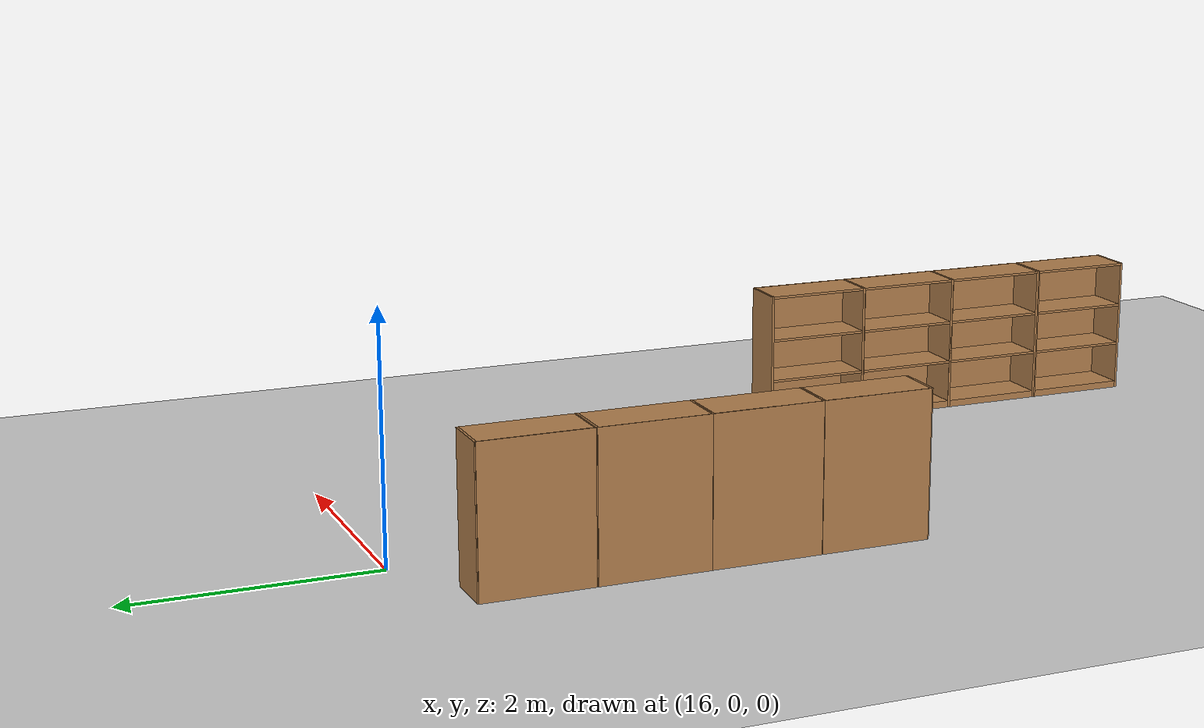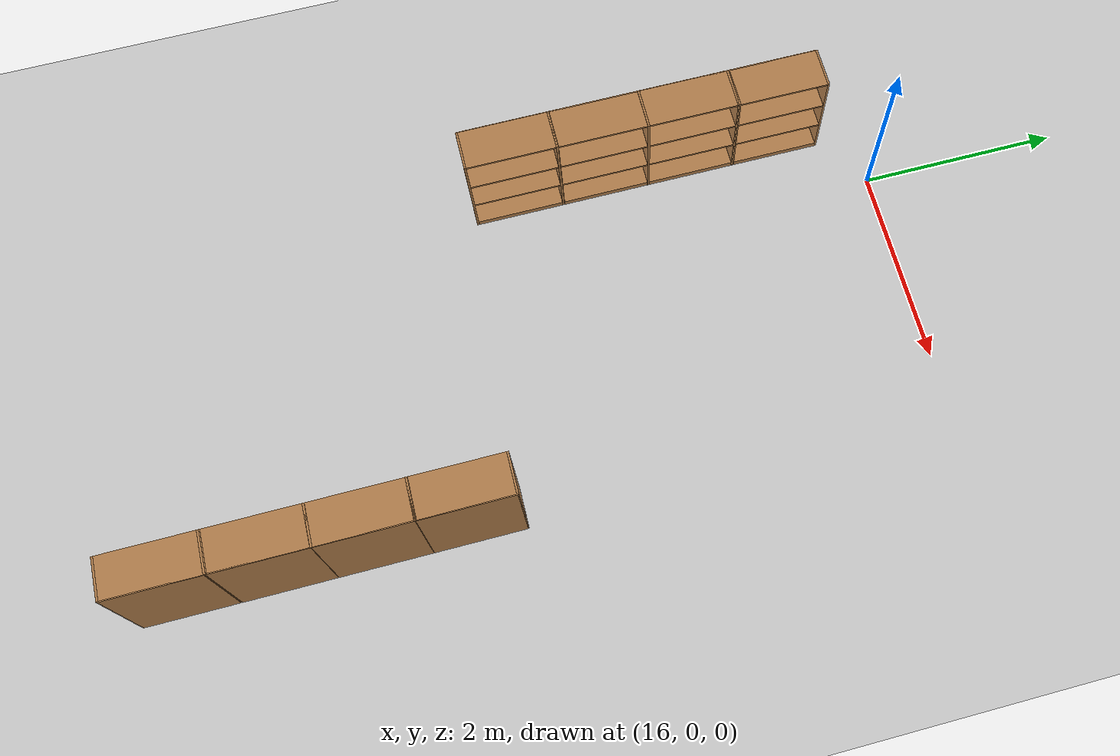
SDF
<sdf version="1.6">
 <world name="default">
  <model name="ground_plane">
   <static>1</static>
   <link name="link">
    <collision name="collision">
     <geometry><plane><normal>0 0 1</normal><size>100 100</size></plane></geometry>
     <surface><friction><ode><mu>100</mu><mu2>50</mu2></ode></friction></surface>
    </collision>
    <visual name="visual">
     <cast_shadows>0</cast_shadows>
     <geometry><plane><normal>0 0 1</normal><size>100 100</size></plane></geometry>
     <material>
      <script><uri>file://media/materials/scripts/gazebo.material</uri><name>Gazebo/Grey</name></script>
     </material>
    </visual>
   </link>
  </model>
  <model name="Bookself-4_clone_14_clone_3_clone_clone_1_clone_0">
   <model name="Bookself-3">
    <model name="bookshelf_0">
     <static>1</static>
     <link name="link">
      <inertial><mass>1</mass></inertial>
      <collision name="back">
       <pose>0 0.005 0.6 0 -0 0</pose>
       <geometry><box><size>0.9 0.01 1.2</size></box></geometry>
      </collision>
      <visual name="visual1">
       <pose>0 0.005 0.6 0 -0 0</pose>
       <geometry><box><size>0.9 0.01 1.2</size></box></geometry>
       <material>
        <script><uri>file://media/materials/scripts/gazebo.material</uri><name>Gazebo/Wood</name></script>
       </material>
      </visual>
      <collision name="left_side">
       <pose>0.45 -0.195 0.6 0 -0 0</pose>
       <geometry><box><size>0.02 0.4 1.2</size></box></geometry>
      </collision>
      <visual name="visual2">
       <pose>0.45 -0.195 0.6 0 -0 0</pose>
       <geometry><box><size>0.02 0.4 1.2</size></box></geometry>
       <material>
        <script><uri>file://media/materials/scripts/gazebo.material</uri><name>Gazebo/Wood</name></script>
       </material>
      </visual>
      <collision name="right_side">
       <pose>-0.45 -0.195 0.6 0 -0 0</pose>
       <geometry><box><size>0.02 0.4 1.2</size></box></geometry>
      </collision>
      <visual name="visual3">
       <pose>-0.45 -0.195 0.6 0 -0 0</pose>
       <geometry><box><size>0.02 0.4 1.2</size></box></geometry>
       <material>
        <script><uri>file://media/materials/scripts/gazebo.material</uri><name>Gazebo/Wood</name></script>
       </material>
      </visual>
      <collision name="bottom">
       <pose>0 -0.195 0.03 0 -0 0</pose>
       <geometry><box><size>0.88 0.4 0.06</size></box></geometry>
      </collision>
      <visual name="visual4">
       <pose>0 -0.195 0.03 0 -0 0</pose>
       <geometry><box><size>0.88 0.4 0.06</size></box></geometry>
       <material>
        <script><uri>file://media/materials/scripts/gazebo.material</uri><name>Gazebo/Wood</name></script>
       </material>
      </visual>
      <collision name="top">
       <pose>0 -0.195 1.19 0 -0 0</pose>
       <geometry><box><size>0.88 0.4 0.02</size></box></geometry>
      </collision>
      <visual name="visual5">
       <pose>0 -0.195 1.19 0 -0 0</pose>
       <geometry><box><size>0.88 0.4 0.02</size></box></geometry>
       <material>
        <script><uri>file://media/materials/scripts/gazebo.material</uri><name>Gazebo/Wood</name></script>
       </material>
      </visual>
      <collision name="low_shelf">
       <pose>0 -0.195 0.43 0 -0 0</pose>
       <geometry><box><size>0.88 0.4 0.02</size></box></geometry>
      </collision>
      <visual name="visual6">
       <pose>0 -0.195 0.43 0 -0 0</pose>
       <geometry><box><size>0.88 0.4 0.02</size></box></geometry>
       <material>
        <script><uri>file://media/materials/scripts/gazebo.material</uri><name>Gazebo/Wood</name></script>
       </material>
      </visual>
      <collision name="high_shelf">
       <pose>0 -0.195 0.8 0 -0 0</pose>
       <geometry><box><size>0.88 0.4 0.02</size></box></geometry>
      </collision>
      <visual name="visual7">
       <pose>0 -0.195 0.8 0 -0 0</pose>
       <geometry><box><size>0.88 0.4 0.02</size></box></geometry>
       <material>
        <script><uri>file://media/materials/scripts/gazebo.material</uri><name>Gazebo/Wood</name></script>
       </material>
      </visual>
     </link>
     <pose>-0.903039 0 0 0 -0 0</pose>
    </model>
    <model name="bookshelf_1">
     <static>1</static>
     <link name="link">
      <inertial><mass>1</mass></inertial>
      <collision name="back">
       <pose>0 0.005 0.6 0 -0 0</pose>
       <geometry><box><size>0.9 0.01 1.2</size></box></geometry>
      </collision>
      <visual name="visual1">
       <pose>0 0.005 0.6 0 -0 0</pose>
       <geometry><box><size>0.9 0.01 1.2</size></box></geometry>
       <material>
        <script><uri>file://media/materials/scripts/gazebo.material</uri><name>Gazebo/Wood</name></script>
       </material>
      </visual>
      <collision name="left_side">
       <pose>0.45 -0.195 0.6 0 -0 0</pose>
       <geometry><box><size>0.02 0.4 1.2</size></box></geometry>
      </collision>
      <visual name="visual2">
       <pose>0.45 -0.195 0.6 0 -0 0</pose>
       <geometry><box><size>0.02 0.4 1.2</size></box></geometry>
       <material>
        <script><uri>file://media/materials/scripts/gazebo.material</uri><name>Gazebo/Wood</name></script>
       </material>
      </visual>
      <collision name="right_side">
       <pose>-0.45 -0.195 0.6 0 -0 0</pose>
       <geometry><box><size>0.02 0.4 1.2</size></box></geometry>
      </collision>
      <visual name="visual3">
       <pose>-0.45 -0.195 0.6 0 -0 0</pose>
       <geometry><box><size>0.02 0.4 1.2</size></box></geometry>
       <material>
        <script><uri>file://media/materials/scripts/gazebo.material</uri><name>Gazebo/Wood</name></script>
       </material>
      </visual>
      <collision name="bottom">
       <pose>0 -0.195 0.03 0 -0 0</pose>
       <geometry><box><size>0.88 0.4 0.06</size></box></geometry>
      </collision>
      <visual name="visual4">
       <pose>0 -0.195 0.03 0 -0 0</pose>
       <geometry><box><size>0.88 0.4 0.06</size></box></geometry>
       <material>
        <script><uri>file://media/materials/scripts/gazebo.material</uri><name>Gazebo/Wood</name></script>
       </material>
      </visual>
      <collision name="top">
       <pose>0 -0.195 1.19 0 -0 0</pose>
       <geometry><box><size>0.88 0.4 0.02</size></box></geometry>
      </collision>
      <visual name="visual5">
       <pose>0 -0.195 1.19 0 -0 0</pose>
       <geometry><box><size>0.88 0.4 0.02</size></box></geometry>
       <material>
        <script><uri>file://media/materials/scripts/gazebo.material</uri><name>Gazebo/Wood</name></script>
       </material>
      </visual>
      <collision name="low_shelf">
       <pose>0 -0.195 0.43 0 -0 0</pose>
       <geometry><box><size>0.88 0.4 0.02</size></box></geometry>
      </collision>
      <visual name="visual6">
       <pose>0 -0.195 0.43 0 -0 0</pose>
       <geometry><box><size>0.88 0.4 0.02</size></box></geometry>
       <material>
        <script><uri>file://media/materials/scripts/gazebo.material</uri><name>Gazebo/Wood</name></script>
       </material>
      </visual>
      <collision name="high_shelf">
       <pose>0 -0.195 0.8 0 -0 0</pose>
       <geometry><box><size>0.88 0.4 0.02</size></box></geometry>
      </collision>
      <visual name="visual7">
       <pose>0 -0.195 0.8 0 -0 0</pose>
       <geometry><box><size>0.88 0.4 0.02</size></box></geometry>
       <material>
        <script><uri>file://media/materials/scripts/gazebo.material</uri><name>Gazebo/Wood</name></script>
       </material>
      </visual>
     </link>
     <pose>0.000535 0 0 0 -0 0</pose>
    </model>
    <model name="bookshelf_1_clone">
     <static>1</static>
     <link name="link">
      <inertial><mass>1</mass></inertial>
      <collision name="back">
       <pose>0 0.005 0.6 0 -0 0</pose>
       <geometry><box><size>0.9 0.01 1.2</size></box></geometry>
      </collision>
      <visual name="visual1">
       <pose>0 0.005 0.6 0 -0 0</pose>
       <geometry><box><size>0.9 0.01 1.2</size></box></geometry>
       <material>
        <script><uri>file://media/materials/scripts/gazebo.material</uri><name>Gazebo/Wood</name></script>
       </material>
      </visual>
      <collision name="left_side">
       <pose>0.45 -0.195 0.6 0 -0 0</pose>
       <geometry><box><size>0.02 0.4 1.2</size></box></geometry>
      </collision>
      <visual name="visual2">
       <pose>0.45 -0.195 0.6 0 -0 0</pose>
       <geometry><box><size>0.02 0.4 1.2</size></box></geometry>
       <material>
        <script><uri>file://media/materials/scripts/gazebo.material</uri><name>Gazebo/Wood</name></script>
       </material>
      </visual>
      <collision name="right_side">
       <pose>-0.45 -0.195 0.6 0 -0 0</pose>
       <geometry><box><size>0.02 0.4 1.2</size></box></geometry>
      </collision>
      <visual name="visual3">
       <pose>-0.45 -0.195 0.6 0 -0 0</pose>
       <geometry><box><size>0.02 0.4 1.2</size></box></geometry>
       <material>
        <script><uri>file://media/materials/scripts/gazebo.material</uri><name>Gazebo/Wood</name></script>
       </material>
      </visual>
      <collision name="bottom">
       <pose>0 -0.195 0.03 0 -0 0</pose>
       <geometry><box><size>0.88 0.4 0.06</size></box></geometry>
      </collision>
      <visual name="visual4">
       <pose>0 -0.195 0.03 0 -0 0</pose>
       <geometry><box><size>0.88 0.4 0.06</size></box></geometry>
       <material>
        <script><uri>file://media/materials/scripts/gazebo.material</uri><name>Gazebo/Wood</name></script>
       </material>
      </visual>
      <collision name="top">
       <pose>0 -0.195 1.19 0 -0 0</pose>
       <geometry><box><size>0.88 0.4 0.02</size></box></geometry>
      </collision>
      <visual name="visual5">
       <pose>0 -0.195 1.19 0 -0 0</pose>
       <geometry><box><size>0.88 0.4 0.02</size></box></geometry>
       <material>
        <script><uri>file://media/materials/scripts/gazebo.material</uri><name>Gazebo/Wood</name></script>
       </material>
      </visual>
      <collision name="low_shelf">
       <pose>0 -0.195 0.43 0 -0 0</pose>
       <geometry><box><size>0.88 0.4 0.02</size></box></geometry>
      </collision>
      <visual name="visual6">
       <pose>0 -0.195 0.43 0 -0 0</pose>
       <geometry><box><size>0.88 0.4 0.02</size></box></geometry>
       <material>
        <script><uri>file://media/materials/scripts/gazebo.material</uri><name>Gazebo/Wood</name></script>
       </material>
      </visual>
      <collision name="high_shelf">
       <pose>0 -0.195 0.8 0 -0 0</pose>
       <geometry><box><size>0.88 0.4 0.02</size></box></geometry>
      </collision>
      <visual name="visual7">
       <pose>0 -0.195 0.8 0 -0 0</pose>
       <geometry><box><size>0.88 0.4 0.02</size></box></geometry>
       <material>
        <script><uri>file://media/materials/scripts/gazebo.material</uri><name>Gazebo/Wood</name></script>
       </material>
      </visual>
     </link>
     <pose>0.902502 0 0 0 -0 0</pose>
    </model>
    <static>1</static>
    <pose>-0.906894 3e-05 0 0 -0 0</pose>
   </model>
   <model name="bookshelf">
    <static>1</static>
    <link name="link">
     <inertial><mass>1</mass></inertial>
     <collision name="back">
      <pose>0 0.005 0.6 0 -0 0</pose>
      <geometry><box><size>0.9 0.01 1.2</size></box></geometry>
     </collision>
     <visual name="visual1">
      <pose>0 0.005 0.6 0 -0 0</pose>
      <geometry><box><size>0.9 0.01 1.2</size></box></geometry>
      <material>
       <script><uri>file://media/materials/scripts/gazebo.material</uri><name>Gazebo/Wood</name></script>
      </material>
     </visual>
     <collision name="left_side">
      <pose>0.45 -0.195 0.6 0 -0 0</pose>
      <geometry><box><size>0.02 0.4 1.2</size></box></geometry>
     </collision>
     <visual name="visual2">
      <pose>0.45 -0.195 0.6 0 -0 0</pose>
      <geometry><box><size>0.02 0.4 1.2</size></box></geometry>
      <material>
       <script><uri>file://media/materials/scripts/gazebo.material</uri><name>Gazebo/Wood</name></script>
      </material>
     </visual>
     <collision name="right_side">
      <pose>-0.45 -0.195 0.6 0 -0 0</pose>
      <geometry><box><size>0.02 0.4 1.2</size></box></geometry>
     </collision>
     <visual name="visual3">
      <pose>-0.45 -0.195 0.6 0 -0 0</pose>
      <geometry><box><size>0.02 0.4 1.2</size></box></geometry>
      <material>
       <script><uri>file://media/materials/scripts/gazebo.material</uri><name>Gazebo/Wood</name></script>
      </material>
     </visual>
     <collision name="bottom">
      <pose>0 -0.195 0.03 0 -0 0</pose>
      <geometry><box><size>0.88 0.4 0.06</size></box></geometry>
     </collision>
     <visual name="visual4">
      <pose>0 -0.195 0.03 0 -0 0</pose>
      <geometry><box><size>0.88 0.4 0.06</size></box></geometry>
      <material>
       <script><uri>file://media/materials/scripts/gazebo.material</uri><name>Gazebo/Wood</name></script>
      </material>
     </visual>
     <collision name="top">
      <pose>0 -0.195 1.19 0 -0 0</pose>
      <geometry><box><size>0.88 0.4 0.02</size></box></geometry>
     </collision>
     <visual name="visual5">
      <pose>0 -0.195 1.19 0 -0 0</pose>
      <geometry><box><size>0.88 0.4 0.02</size></box></geometry>
      <material>
       <script><uri>file://media/materials/scripts/gazebo.material</uri><name>Gazebo/Wood</name></script>
      </material>
     </visual>
     <collision name="low_shelf">
      <pose>0 -0.195 0.43 0 -0 0</pose>
      <geometry><box><size>0.88 0.4 0.02</size></box></geometry>
     </collision>
     <visual name="visual6">
      <pose>0 -0.195 0.43 0 -0 0</pose>
      <geometry><box><size>0.88 0.4 0.02</size></box></geometry>
      <material>
       <script><uri>file://media/materials/scripts/gazebo.material</uri><name>Gazebo/Wood</name></script>
      </material>
     </visual>
     <collision name="high_shelf">
      <pose>0 -0.195 0.8 0 -0 0</pose>
      <geometry><box><size>0.88 0.4 0.02</size></box></geometry>
     </collision>
     <visual name="visual7">
      <pose>0 -0.195 0.8 0 -0 0</pose>
      <geometry><box><size>0.88 0.4 0.02</size></box></geometry>
      <material>
       <script><uri>file://media/materials/scripts/gazebo.material</uri><name>Gazebo/Wood</name></script>
      </material>
     </visual>
    </link>
    <pose>0.906808 3e-05 0 0 -0 0</pose>
   </model>
   <static>0</static>
   <pose>18.6768 -6.50216 0 0 0 -1.5707</pose>
  </model>
  <model name="Bookself-4_clone_14_clone_7_clone">
   <model name="Bookself-3">
    <model name="bookshelf_0">
     <static>1</static>
     <link name="link">
      <inertial><mass>1</mass></inertial>
      <collision name="back">
       <pose>0 0.005 0.6 0 -0 0</pose>
       <geometry><box><size>0.9 0.01 1.2</size></box></geometry>
      </collision>
      <visual name="visual1">
       <pose>0 0.005 0.6 0 -0 0</pose>
       <geometry><box><size>0.9 0.01 1.2</size></box></geometry>
       <material>
        <script><uri>file://media/materials/scripts/gazebo.material</uri><name>Gazebo/Wood</name></script>
       </material>
      </visual>
      <collision name="left_side">
       <pose>0.45 -0.195 0.6 0 -0 0</pose>
       <geometry><box><size>0.02 0.4 1.2</size></box></geometry>
      </collision>
      <visual name="visual2">
       <pose>0.45 -0.195 0.6 0 -0 0</pose>
       <geometry><box><size>0.02 0.4 1.2</size></box></geometry>
       <material>
        <script><uri>file://media/materials/scripts/gazebo.material</uri><name>Gazebo/Wood</name></script>
       </material>
      </visual>
      <collision name="right_side">
       <pose>-0.45 -0.195 0.6 0 -0 0</pose>
       <geometry><box><size>0.02 0.4 1.2</size></box></geometry>
      </collision>
      <visual name="visual3">
       <pose>-0.45 -0.195 0.6 0 -0 0</pose>
       <geometry><box><size>0.02 0.4 1.2</size></box></geometry>
       <material>
        <script><uri>file://media/materials/scripts/gazebo.material</uri><name>Gazebo/Wood</name></script>
       </material>
      </visual>
      <collision name="bottom">
       <pose>0 -0.195 0.03 0 -0 0</pose>
       <geometry><box><size>0.88 0.4 0.06</size></box></geometry>
      </collision>
      <visual name="visual4">
       <pose>0 -0.195 0.03 0 -0 0</pose>
       <geometry><box><size>0.88 0.4 0.06</size></box></geometry>
       <material>
        <script><uri>file://media/materials/scripts/gazebo.material</uri><name>Gazebo/Wood</name></script>
       </material>
      </visual>
      <collision name="top">
       <pose>0 -0.195 1.19 0 -0 0</pose>
       <geometry><box><size>0.88 0.4 0.02</size></box></geometry>
      </collision>
      <visual name="visual5">
       <pose>0 -0.195 1.19 0 -0 0</pose>
       <geometry><box><size>0.88 0.4 0.02</size></box></geometry>
       <material>
        <script><uri>file://media/materials/scripts/gazebo.material</uri><name>Gazebo/Wood</name></script>
       </material>
      </visual>
      <collision name="low_shelf">
       <pose>0 -0.195 0.43 0 -0 0</pose>
       <geometry><box><size>0.88 0.4 0.02</size></box></geometry>
      </collision>
      <visual name="visual6">
       <pose>0 -0.195 0.43 0 -0 0</pose>
       <geometry><box><size>0.88 0.4 0.02</size></box></geometry>
       <material>
        <script><uri>file://media/materials/scripts/gazebo.material</uri><name>Gazebo/Wood</name></script>
       </material>
      </visual>
      <collision name="high_shelf">
       <pose>0 -0.195 0.8 0 -0 0</pose>
       <geometry><box><size>0.88 0.4 0.02</size></box></geometry>
      </collision>
      <visual name="visual7">
       <pose>0 -0.195 0.8 0 -0 0</pose>
       <geometry><box><size>0.88 0.4 0.02</size></box></geometry>
       <material>
        <script><uri>file://media/materials/scripts/gazebo.material</uri><name>Gazebo/Wood</name></script>
       </material>
      </visual>
     </link>
     <pose>-0.903039 0 0 0 -0 0</pose>
    </model>
    <model name="bookshelf_1">
     <static>1</static>
     <link name="link">
      <inertial><mass>1</mass></inertial>
      <collision name="back">
       <pose>0 0.005 0.6 0 -0 0</pose>
       <geometry><box><size>0.9 0.01 1.2</size></box></geometry>
      </collision>
      <visual name="visual1">
       <pose>0 0.005 0.6 0 -0 0</pose>
       <geometry><box><size>0.9 0.01 1.2</size></box></geometry>
       <material>
        <script><uri>file://media/materials/scripts/gazebo.material</uri><name>Gazebo/Wood</name></script>
       </material>
      </visual>
      <collision name="left_side">
       <pose>0.45 -0.195 0.6 0 -0 0</pose>
       <geometry><box><size>0.02 0.4 1.2</size></box></geometry>
      </collision>
      <visual name="visual2">
       <pose>0.45 -0.195 0.6 0 -0 0</pose>
       <geometry><box><size>0.02 0.4 1.2</size></box></geometry>
       <material>
        <script><uri>file://media/materials/scripts/gazebo.material</uri><name>Gazebo/Wood</name></script>
       </material>
      </visual>
      <collision name="right_side">
       <pose>-0.45 -0.195 0.6 0 -0 0</pose>
       <geometry><box><size>0.02 0.4 1.2</size></box></geometry>
      </collision>
      <visual name="visual3">
       <pose>-0.45 -0.195 0.6 0 -0 0</pose>
       <geometry><box><size>0.02 0.4 1.2</size></box></geometry>
       <material>
        <script><uri>file://media/materials/scripts/gazebo.material</uri><name>Gazebo/Wood</name></script>
       </material>
      </visual>
      <collision name="bottom">
       <pose>0 -0.195 0.03 0 -0 0</pose>
       <geometry><box><size>0.88 0.4 0.06</size></box></geometry>
      </collision>
      <visual name="visual4">
       <pose>0 -0.195 0.03 0 -0 0</pose>
       <geometry><box><size>0.88 0.4 0.06</size></box></geometry>
       <material>
        <script><uri>file://media/materials/scripts/gazebo.material</uri><name>Gazebo/Wood</name></script>
       </material>
      </visual>
      <collision name="top">
       <pose>0 -0.195 1.19 0 -0 0</pose>
       <geometry><box><size>0.88 0.4 0.02</size></box></geometry>
      </collision>
      <visual name="visual5">
       <pose>0 -0.195 1.19 0 -0 0</pose>
       <geometry><box><size>0.88 0.4 0.02</size></box></geometry>
       <material>
        <script><uri>file://media/materials/scripts/gazebo.material</uri><name>Gazebo/Wood</name></script>
       </material>
      </visual>
      <collision name="low_shelf">
       <pose>0 -0.195 0.43 0 -0 0</pose>
       <geometry><box><size>0.88 0.4 0.02</size></box></geometry>
      </collision>
      <visual name="visual6">
       <pose>0 -0.195 0.43 0 -0 0</pose>
       <geometry><box><size>0.88 0.4 0.02</size></box></geometry>
       <material>
        <script><uri>file://media/materials/scripts/gazebo.material</uri><name>Gazebo/Wood</name></script>
       </material>
      </visual>
      <collision name="high_shelf">
       <pose>0 -0.195 0.8 0 -0 0</pose>
       <geometry><box><size>0.88 0.4 0.02</size></box></geometry>
      </collision>
      <visual name="visual7">
       <pose>0 -0.195 0.8 0 -0 0</pose>
       <geometry><box><size>0.88 0.4 0.02</size></box></geometry>
       <material>
        <script><uri>file://media/materials/scripts/gazebo.material</uri><name>Gazebo/Wood</name></script>
       </material>
      </visual>
     </link>
     <pose>0.000535 0 0 0 -0 0</pose>
    </model>
    <model name="bookshelf_1_clone">
     <static>1</static>
     <link name="link">
      <inertial><mass>1</mass></inertial>
      <collision name="back">
       <pose>0 0.005 0.6 0 -0 0</pose>
       <geometry><box><size>0.9 0.01 1.2</size></box></geometry>
      </collision>
      <visual name="visual1">
       <pose>0 0.005 0.6 0 -0 0</pose>
       <geometry><box><size>0.9 0.01 1.2</size></box></geometry>
       <material>
        <script><uri>file://media/materials/scripts/gazebo.material</uri><name>Gazebo/Wood</name></script>
       </material>
      </visual>
      <collision name="left_side">
       <pose>0.45 -0.195 0.6 0 -0 0</pose>
       <geometry><box><size>0.02 0.4 1.2</size></box></geometry>
      </collision>
      <visual name="visual2">
       <pose>0.45 -0.195 0.6 0 -0 0</pose>
       <geometry><box><size>0.02 0.4 1.2</size></box></geometry>
       <material>
        <script><uri>file://media/materials/scripts/gazebo.material</uri><name>Gazebo/Wood</name></script>
       </material>
      </visual>
      <collision name="right_side">
       <pose>-0.45 -0.195 0.6 0 -0 0</pose>
       <geometry><box><size>0.02 0.4 1.2</size></box></geometry>
      </collision>
      <visual name="visual3">
       <pose>-0.45 -0.195 0.6 0 -0 0</pose>
       <geometry><box><size>0.02 0.4 1.2</size></box></geometry>
       <material>
        <script><uri>file://media/materials/scripts/gazebo.material</uri><name>Gazebo/Wood</name></script>
       </material>
      </visual>
      <collision name="bottom">
       <pose>0 -0.195 0.03 0 -0 0</pose>
       <geometry><box><size>0.88 0.4 0.06</size></box></geometry>
      </collision>
      <visual name="visual4">
       <pose>0 -0.195 0.03 0 -0 0</pose>
       <geometry><box><size>0.88 0.4 0.06</size></box></geometry>
       <material>
        <script><uri>file://media/materials/scripts/gazebo.material</uri><name>Gazebo/Wood</name></script>
       </material>
      </visual>
      <collision name="top">
       <pose>0 -0.195 1.19 0 -0 0</pose>
       <geometry><box><size>0.88 0.4 0.02</size></box></geometry>
      </collision>
      <visual name="visual5">
       <pose>0 -0.195 1.19 0 -0 0</pose>
       <geometry><box><size>0.88 0.4 0.02</size></box></geometry>
       <material>
        <script><uri>file://media/materials/scripts/gazebo.material</uri><name>Gazebo/Wood</name></script>
       </material>
      </visual>
      <collision name="low_shelf">
       <pose>0 -0.195 0.43 0 -0 0</pose>
       <geometry><box><size>0.88 0.4 0.02</size></box></geometry>
      </collision>
      <visual name="visual6">
       <pose>0 -0.195 0.43 0 -0 0</pose>
       <geometry><box><size>0.88 0.4 0.02</size></box></geometry>
       <material>
        <script><uri>file://media/materials/scripts/gazebo.material</uri><name>Gazebo/Wood</name></script>
       </material>
      </visual>
      <collision name="high_shelf">
       <pose>0 -0.195 0.8 0 -0 0</pose>
       <geometry><box><size>0.88 0.4 0.02</size></box></geometry>
      </collision>
      <visual name="visual7">
       <pose>0 -0.195 0.8 0 -0 0</pose>
       <geometry><box><size>0.88 0.4 0.02</size></box></geometry>
       <material>
        <script><uri>file://media/materials/scripts/gazebo.material</uri><name>Gazebo/Wood</name></script>
       </material>
      </visual>
     </link>
     <pose>0.902502 0 0 0 -0 0</pose>
    </model>
    <static>1</static>
    <pose>-0.906894 3e-05 0 0 -0 0</pose>
   </model>
   <model name="bookshelf">
    <static>1</static>
    <link name="link">
     <inertial><mass>1</mass></inertial>
     <collision name="back">
      <pose>0 0.005 0.6 0 -0 0</pose>
      <geometry><box><size>0.9 0.01 1.2</size></box></geometry>
     </collision>
     <visual name="visual1">
      <pose>0 0.005 0.6 0 -0 0</pose>
      <geometry><box><size>0.9 0.01 1.2</size></box></geometry>
      <material>
       <script><uri>file://media/materials/scripts/gazebo.material</uri><name>Gazebo/Wood</name></script>
      </material>
     </visual>
     <collision name="left_side">
      <pose>0.45 -0.195 0.6 0 -0 0</pose>
      <geometry><box><size>0.02 0.4 1.2</size></box></geometry>
     </collision>
     <visual name="visual2">
      <pose>0.45 -0.195 0.6 0 -0 0</pose>
      <geometry><box><size>0.02 0.4 1.2</size></box></geometry>
      <material>
       <script><uri>file://media/materials/scripts/gazebo.material</uri><name>Gazebo/Wood</name></script>
      </material>
     </visual>
     <collision name="right_side">
      <pose>-0.45 -0.195 0.6 0 -0 0</pose>
      <geometry><box><size>0.02 0.4 1.2</size></box></geometry>
     </collision>
     <visual name="visual3">
      <pose>-0.45 -0.195 0.6 0 -0 0</pose>
      <geometry><box><size>0.02 0.4 1.2</size></box></geometry>
      <material>
       <script><uri>file://media/materials/scripts/gazebo.material</uri><name>Gazebo/Wood</name></script>
      </material>
     </visual>
     <collision name="bottom">
      <pose>0 -0.195 0.03 0 -0 0</pose>
      <geometry><box><size>0.88 0.4 0.06</size></box></geometry>
     </collision>
     <visual name="visual4">
      <pose>0 -0.195 0.03 0 -0 0</pose>
      <geometry><box><size>0.88 0.4 0.06</size></box></geometry>
      <material>
       <script><uri>file://media/materials/scripts/gazebo.material</uri><name>Gazebo/Wood</name></script>
      </material>
     </visual>
     <collision name="top">
      <pose>0 -0.195 1.19 0 -0 0</pose>
      <geometry><box><size>0.88 0.4 0.02</size></box></geometry>
     </collision>
     <visual name="visual5">
      <pose>0 -0.195 1.19 0 -0 0</pose>
      <geometry><box><size>0.88 0.4 0.02</size></box></geometry>
      <material>
       <script><uri>file://media/materials/scripts/gazebo.material</uri><name>Gazebo/Wood</name></script>
      </material>
     </visual>
     <collision name="low_shelf">
      <pose>0 -0.195 0.43 0 -0 0</pose>
      <geometry><box><size>0.88 0.4 0.02</size></box></geometry>
     </collision>
     <visual name="visual6">
      <pose>0 -0.195 0.43 0 -0 0</pose>
      <geometry><box><size>0.88 0.4 0.02</size></box></geometry>
      <material>
       <script><uri>file://media/materials/scripts/gazebo.material</uri><name>Gazebo/Wood</name></script>
      </material>
     </visual>
     <collision name="high_shelf">
      <pose>0 -0.195 0.8 0 -0 0</pose>
      <geometry><box><size>0.88 0.4 0.02</size></box></geometry>
     </collision>
     <visual name="visual7">
      <pose>0 -0.195 0.8 0 -0 0</pose>
      <geometry><box><size>0.88 0.4 0.02</size></box></geometry>
      <material>
       <script><uri>file://media/materials/scripts/gazebo.material</uri><name>Gazebo/Wood</name></script>
      </material>
     </visual>
    </link>
    <pose>0.906808 3e-05 0 0 -0 0</pose>
   </model>
   <static>0</static>
   <pose>15.0615 -1.753 0 0 -0 1.5707</pose>
  </model>
 </world>
</sdf>
